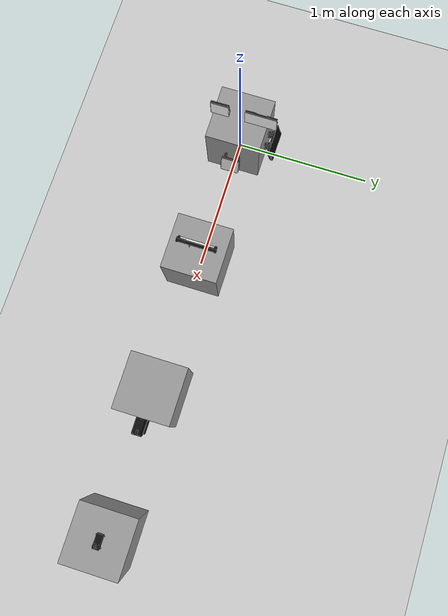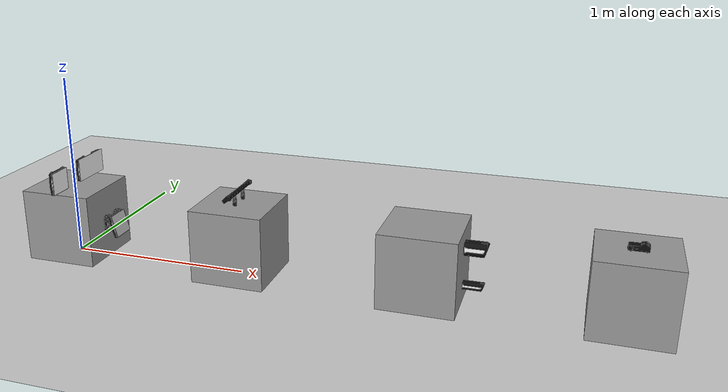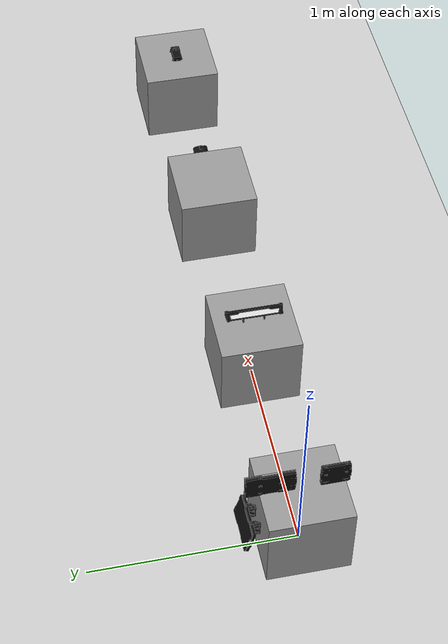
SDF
<?xml version="1.0" ?>
<sdf version="1.6">
    <world name="rm21_referee_system">
        <physics name="1ms" type="ignored">
            <max_step_size>0.001</max_step_size>
            <real_time_factor>1.0</real_time_factor>
        </physics>
        <plugin
      filename="ignition-gazebo-physics-system"
      name="ignition::gazebo::systems::Physics">
    </plugin>
        <plugin
      filename="ignition-gazebo-user-commands-system"
      name="ignition::gazebo::systems::UserCommands">
    </plugin>
        <plugin
      filename="ignition-gazebo-scene-broadcaster-system"
      name="ignition::gazebo::systems::SceneBroadcaster">
    </plugin>
        <light type="directional" name="sun">
            <cast_shadows>true</cast_shadows>
            <pose>0 0 10 0 0 0</pose>
            <diffuse>1 1 1 1</diffuse>
            <specular>0.5 0.5 0.5 1</specular>
            <attenuation>
                <range>1000</range>
                <constant>0.9</constant>
                <linear>0.01</linear>
                <quadratic>0.001</quadratic>
            </attenuation>
            <direction>-0.5 0.1 -0.9</direction>
        </light>
        <model name="ground_plane">
            <static>true</static>
            <link name="link">
                <collision name="collision">
                    <geometry>
                        <plane>
                            <normal>0 0 1</normal>
                            <size>100 100</size>
                        </plane>
                    </geometry>
                </collision>
                <visual name="visual">
                    <geometry>
                        <plane>
                            <normal>0 0 1</normal>
                            <size>100 100</size>
                        </plane>
                    </geometry>
                    <material>
                        <ambient>0.8 0.8 0.8 1</ambient>
                        <diffuse>0.8 0.8 0.8 1</diffuse>
                        <specular>0.8 0.8 0.8 1</specular>
                    </material>
                </visual>
            </link>
        </model>
        <include>
            <uri>model://rm22_armor_module</uri>
            <name>armor_module</name>
            <pose>0 0 0.2 0 0 0</pose>
        </include>
        <include>
            <uri>model://rm22_light_indicator_module</uri>
            <name>light_indicator_module</name>
            <pose>1 0 0.2 0 0 0</pose>
        </include>
        <include>
            <uri>model://rm22_speed_monitor_module</uri>
            <name>speed_monitor_module</name>
            <pose>2 0 0.2 0 0 0</pose>
        </include>
        <include>
            <uri>model://rm22_video_transmitter_module</uri>
            <name>video_transmitter_module</name>
            <pose>3 0 0.2 0 0 0</pose>
        </include>
    </world>
</sdf>

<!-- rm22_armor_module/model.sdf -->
<!-- |    This document was autogenerated by xmacro4sdf from model.sdf.xmacro          | -->
<!-- |    EDITING THIS FILE BY HAND IS NOT RECOMMENDED                                 | -->
<sdf version="1.7">
	<!--include defination-->
	<!--rm22_armor_module example-->
	<model name="rm22_armor_module">
		<pose>0 0 0.2 0 0 0</pose>
		<link name="base_link">
			<inertial>
				<mass>0.4</mass>
				<inertia>
					<ixx>0.01066666666666667</ixx>
					<ixy>0</ixy>
					<ixz>0</ixz>
					<iyy>0.01066666666666667</iyy>
					<iyz>0</iyz>
					<izz>0.01066666666666667</izz>
				</inertia>
			</inertial>
			<visual name="visual">
				<geometry>
					<box>
						<size>0.4 0.4 0.4</size>
					</box>
				</geometry>
				<material>
					<ambient>0.6 0.6 0.6 1</ambient>
					<diffuse>0.6 0.6 0.6 1</diffuse>
				</material>
			</visual>
			<collision name="collision">
				<geometry>
					<box>
						<size>0.4 0.4 0.4</size>
					</box>
				</geometry>
			</collision>
		</link>
		<joint name="armor_1_joint" type="fixed">
			<pose relative_to="base_link">0 -0.15 0.2 0 0 0</pose>
			<parent>base_link</parent>
			<child>armor_1</child>
		</joint>
		<link name="armor_1">
			<pose relative_to="armor_1_joint">0 0 0 0 0 0</pose>
			<inertial>
				<pose>0 0 0.0625 0 0 0</pose>
				<mass>0.1</mass>
				<inertia>
					<ixx>0.0003065083333333333</ixx>
					<ixy>0</ixy>
					<ixz>0</ixz>
					<iyy>0.0001421774166666667</iyy>
					<iyz>0</iyz>
					<izz>0.0001670190833333333</izz>
				</inertia>
			</inertial>
			<visual name="visual">
				<geometry>
					<mesh>
						<uri>model://rm21_armor_module/meshes/small_armor.dae</uri>
					</mesh>
				</geometry>
				<material>
					<ambient>0.1 0.1 0.1</ambient>
					<diffuse>0.05 0.05 0.05</diffuse>
					<specular>0.6 0.6 0.6</specular>
				</material>
			</visual>
			<visual name="target_visual">
				<geometry>
					<mesh>
						<uri>model://rm21_armor_module/meshes/small_armor_target.dae</uri>
					</mesh>
				</geometry>
				<material>
					<ambient>0.1 0.1 0.1</ambient>
					<diffuse>0.05 0.05 0.05</diffuse>
					<specular>0.6 0.6 0.6</specular>
				</material>
			</visual>
			<visual name="light_bar_visual">
				<geometry>
					<mesh>
						<uri>model://rm21_armor_module/meshes/small_armor_light_bar.dae</uri>
					</mesh>
				</geometry>
				<material>
					<ambient>1.0 1.0 1.0</ambient>
					<diffuse>1.0 1.0 1.0</diffuse>
					<specular>0.5 0.5 0.5</specular>
				</material>
			</visual>
			<visual name="sticker_visual">
				<pose>0.014 0 0.0625 1.5708 0 1.5708</pose>
				<geometry>
					<plane>
						<normal>0 0 1</normal>
						<size>0.130 0.120</size>
					</plane>
				</geometry>
				<material>
					<ambient>1.0 1.0 1.0</ambient>
					<diffuse>1.0 1.0 1.0</diffuse>
					<specular>0.1 0.1 0.1</specular>
					<pbr>
						<metal>
							<albedo_map>model://rm22_armor_module/materials/textures/ua_num1_0.png</albedo_map>
						</metal>
					</pbr>
				</material>
			</visual>
			<collision name="collision">
				<pose>0 0 0.0625 0 0 0</pose>
				<geometry>
					<box>
						<size>0.013 0.135 0.125</size>
					</box>
				</geometry>
			</collision>
			<collision name="target_collision">
				<pose>0.012 0 0.0625 0 0 0</pose>
				<geometry>
					<box>
						<size>0.008 0.135 0.125</size>
					</box>
				</geometry>
			</collision>
		</link>
		<joint name="armor_2_joint" type="fixed">
			<pose relative_to="base_link">0 0.15 0.2 0 0 0</pose>
			<parent>base_link</parent>
			<child>armor_2</child>
		</joint>
		<link name="armor_2">
			<pose relative_to="armor_2_joint">0 0 0 0 0 0</pose>
			<inertial>
				<pose>0 0 0.065 0 0 0</pose>
				<mass>0.1</mass>
				<inertia>
					<ixx>0.0006049666666666666</ixx>
					<ixy>0</ixy>
					<ixz>0</ixz>
					<iyy>0.00014203333333333333</iyy>
					<iyz>0</iyz>
					<izz>0.0004653333333333333</izz>
				</inertia>
			</inertial>
			<visual name="visual">
				<geometry>
					<mesh>
						<uri>model://rm21_armor_module/meshes/large_armor.stl</uri>
					</mesh>
				</geometry>
				<material>
					<ambient>0.1 0.1 0.1</ambient>
					<diffuse>0.05 0.05 0.05</diffuse>
					<specular>0.6 0.6 0.6</specular>
				</material>
			</visual>
			<visual name="target_visual">
				<geometry>
					<mesh>
						<uri>model://rm21_armor_module/meshes/large_armor_target.stl</uri>
					</mesh>
				</geometry>
				<material>
					<ambient>0.1 0.1 0.1</ambient>
					<diffuse>0.05 0.05 0.05</diffuse>
					<specular>0.6 0.6 0.6</specular>
				</material>
			</visual>
			<visual name="light_bar_visual">
				<geometry>
					<mesh>
						<uri>model://rm21_armor_module/meshes/large_armor_light_bar.stl</uri>
					</mesh>
				</geometry>
				<material>
					<ambient>1.0 1.0 1.0</ambient>
					<diffuse>1.0 1.0 1.0</diffuse>
					<specular>0.5 0.5 0.5</specular>
				</material>
			</visual>
			<visual name="sticker_visual">
				<pose>0.014 0 0.0645 1.5708 0 1.5708</pose>
				<geometry>
					<plane>
						<normal>0 0 1</normal>
						<size>0.233 0.127</size>
					</plane>
				</geometry>
				<material>
					<ambient>1.0 1.0 1.0</ambient>
					<diffuse>1.0 1.0 1.0</diffuse>
					<specular>0.1 0.1 0.1</specular>
					<pbr>
						<metal>
							<albedo_map>model://rm21_armor_module/materials/textures/large_num1.png</albedo_map>
						</metal>
					</pbr>
				</material>
			</visual>
			<collision name="collision">
				<pose>0 0 0.0625 0 0 0</pose>
				<geometry>
					<box>
						<size>0.013 0.236 0.125</size>
					</box>
				</geometry>
			</collision>
			<collision name="target_collision">
				<pose>0.012 0 0.0625 0 0 0</pose>
				<geometry>
					<box>
						<size>0.008 0.236 0.125</size>
					</box>
				</geometry>
			</collision>
		</link>
		<joint name="armor_support_frame_3_joint" type="fixed">
			<pose relative_to="base_link">0.2 0 0 0 0 0</pose>
			<parent>base_link</parent>
			<child>armor_support_frame_3</child>
		</joint>
		<link name="armor_support_frame_3">
			<pose relative_to="armor_support_frame_3_joint">0 0 0 0 0 0</pose>
			<inertial>
				<pose>0.035 0 0 0 0 0</pose>
				<mass>0.1</mass>
				<inertia>
					<ixx>0.00023080833333333334</ixx>
					<ixy>0</ixy>
					<ixz>0</ixz>
					<iyy>0.00017014166666666668</iyy>
					<iyz>0</iyz>
					<izz>0.00014468333333333334</izz>
				</inertia>
			</inertial>
			<visual name="visual">
				<geometry>
					<mesh>
						<uri>model://rm21_armor_module/meshes/armor_support_frame.stl</uri>
					</mesh>
				</geometry>
				<material>
					<ambient>0.1 0.1 0.1</ambient>
					<diffuse>0.05 0.05 0.05</diffuse>
					<specular>0.6 0.6 0.6</specular>
				</material>
			</visual>
			<collision name="collision">
				<pose>0.015 0 0 0 0 0</pose>
				<geometry>
					<box>
						<size>0.03 0.11 0.08</size>
					</box>
				</geometry>
			</collision>
		</link>
		<joint name="armor_3_joint" type="fixed">
			<pose relative_to="armor_support_frame_3">0.075 0 -0.071 0 -0.262 0</pose>
			<parent>armor_support_frame_3</parent>
			<child>armor_3</child>
		</joint>
		<link name="armor_3">
			<pose relative_to="armor_3_joint">0 0 0 0 0 0</pose>
			<inertial>
				<pose>0 0 0.0625 0 0 0</pose>
				<mass>0.1</mass>
				<inertia>
					<ixx>0.0003065083333333333</ixx>
					<ixy>0</ixy>
					<ixz>0</ixz>
					<iyy>0.0001421774166666667</iyy>
					<iyz>0</iyz>
					<izz>0.0001670190833333333</izz>
				</inertia>
			</inertial>
			<visual name="visual">
				<geometry>
					<mesh>
						<uri>model://rm21_armor_module/meshes/small_armor.dae</uri>
					</mesh>
				</geometry>
				<material>
					<ambient>0.1 0.1 0.1</ambient>
					<diffuse>0.05 0.05 0.05</diffuse>
					<specular>0.6 0.6 0.6</specular>
				</material>
			</visual>
			<visual name="target_visual">
				<geometry>
					<mesh>
						<uri>model://rm21_armor_module/meshes/small_armor_target.dae</uri>
					</mesh>
				</geometry>
				<material>
					<ambient>0.1 0.1 0.1</ambient>
					<diffuse>0.05 0.05 0.05</diffuse>
					<specular>0.6 0.6 0.6</specular>
				</material>
			</visual>
			<visual name="light_bar_visual">
				<geometry>
					<mesh>
						<uri>model://rm21_armor_module/meshes/small_armor_light_bar.dae</uri>
					</mesh>
				</geometry>
				<material>
					<ambient>1.0 1.0 1.0</ambient>
					<diffuse>1.0 1.0 1.0</diffuse>
					<specular>0.5 0.5 0.5</specular>
				</material>
			</visual>
			<visual name="sticker_visual">
				<pose>0.014 0 0.0625 1.5708 0 1.5708</pose>
				<geometry>
					<plane>
						<normal>0 0 1</normal>
						<size>0.130 0.120</size>
					</plane>
				</geometry>
				<material>
					<ambient>1.0 1.0 1.0</ambient>
					<diffuse>1.0 1.0 1.0</diffuse>
					<specular>0.1 0.1 0.1</specular>
					<pbr>
						<metal>
							<albedo_map>model://rm22_armor_module/materials/textures/ua_num2_1.png</albedo_map>
						</metal>
					</pbr>
				</material>
			</visual>
			<collision name="collision">
				<pose>0 0 0.0625 0 0 0</pose>
				<geometry>
					<box>
						<size>0.013 0.135 0.125</size>
					</box>
				</geometry>
			</collision>
			<collision name="target_collision">
				<pose>0.012 0 0.0625 0 0 0</pose>
				<geometry>
					<box>
						<size>0.008 0.135 0.125</size>
					</box>
				</geometry>
			</collision>
		</link>
		<joint name="armor_support_frame_4_joint" type="fixed">
			<pose relative_to="base_link">0 0.2 0 0 0 1.57</pose>
			<parent>base_link</parent>
			<child>armor_support_frame_4</child>
		</joint>
		<link name="armor_support_frame_4">
			<pose relative_to="armor_support_frame_4_joint">0 0 0 0 0 0</pose>
			<inertial>
				<pose>0.035 0 0 0 0 0</pose>
				<mass>0.1</mass>
				<inertia>
					<ixx>0.00023080833333333334</ixx>
					<ixy>0</ixy>
					<ixz>0</ixz>
					<iyy>0.00017014166666666668</iyy>
					<iyz>0</iyz>
					<izz>0.00014468333333333334</izz>
				</inertia>
			</inertial>
			<visual name="visual">
				<geometry>
					<mesh>
						<uri>model://rm21_armor_module/meshes/armor_support_frame.stl</uri>
					</mesh>
				</geometry>
				<material>
					<ambient>0.1 0.1 0.1</ambient>
					<diffuse>0.05 0.05 0.05</diffuse>
					<specular>0.6 0.6 0.6</specular>
				</material>
			</visual>
			<collision name="collision">
				<pose>0.015 0 0 0 0 0</pose>
				<geometry>
					<box>
						<size>0.03 0.11 0.08</size>
					</box>
				</geometry>
			</collision>
		</link>
		<joint name="armor_4_joint" type="fixed">
			<pose relative_to="armor_support_frame_4">0.075 0 -0.071 0 -0.262 0</pose>
			<parent>armor_support_frame_4</parent>
			<child>armor_4</child>
		</joint>
		<link name="armor_4">
			<pose relative_to="armor_4_joint">0 0 0 0 0 0</pose>
			<inertial>
				<pose>0 0 0.065 0 0 0</pose>
				<mass>0.1</mass>
				<inertia>
					<ixx>0.0006049666666666666</ixx>
					<ixy>0</ixy>
					<ixz>0</ixz>
					<iyy>0.00014203333333333333</iyy>
					<iyz>0</iyz>
					<izz>0.0004653333333333333</izz>
				</inertia>
			</inertial>
			<visual name="visual">
				<geometry>
					<mesh>
						<uri>model://rm21_armor_module/meshes/large_armor.stl</uri>
					</mesh>
				</geometry>
				<material>
					<ambient>0.1 0.1 0.1</ambient>
					<diffuse>0.05 0.05 0.05</diffuse>
					<specular>0.6 0.6 0.6</specular>
				</material>
			</visual>
			<visual name="target_visual">
				<geometry>
					<mesh>
						<uri>model://rm21_armor_module/meshes/large_armor_target.stl</uri>
					</mesh>
				</geometry>
				<material>
					<ambient>0.1 0.1 0.1</ambient>
					<diffuse>0.05 0.05 0.05</diffuse>
					<specular>0.6 0.6 0.6</specular>
				</material>
			</visual>
			<visual name="light_bar_visual">
				<geometry>
					<mesh>
						<uri>model://rm21_armor_module/meshes/large_armor_light_bar.stl</uri>
					</mesh>
				</geometry>
				<material>
					<ambient>1.0 1.0 1.0</ambient>
					<diffuse>1.0 1.0 1.0</diffuse>
					<specular>0.5 0.5 0.5</specular>
				</material>
			</visual>
			<collision name="collision">
				<pose>0 0 0.0625 0 0 0</pose>
				<geometry>
					<box>
						<size>0.013 0.236 0.125</size>
					</box>
				</geometry>
			</collision>
			<collision name="target_collision">
				<pose>0.012 0 0.0625 0 0 0</pose>
				<geometry>
					<box>
						<size>0.008 0.236 0.125</size>
					</box>
				</geometry>
			</collision>
		</link>
	</model>
</sdf>

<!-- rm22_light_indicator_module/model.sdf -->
<!-- |    This document was autogenerated by xmacro4sdf from model.sdf.xmacro          | -->
<!-- |    EDITING THIS FILE BY HAND IS NOT RECOMMENDED                                 | -->
<sdf version="1.7">
	<!--include defination-->
	<!--rm22_light_indicator_module example-->
	<model name="rm22_light_indicator_module">
		<pose>0 0 0.2 0 0 0</pose>
		<link name="base_link">
			<inertial>
				<mass>0.4</mass>
				<inertia>
					<ixx>0.01066666666666667</ixx>
					<ixy>0</ixy>
					<ixz>0</ixz>
					<iyy>0.01066666666666667</iyy>
					<iyz>0</iyz>
					<izz>0.01066666666666667</izz>
				</inertia>
			</inertial>
			<visual name="visual">
				<geometry>
					<box>
						<size>0.4 0.4 0.4</size>
					</box>
				</geometry>
				<material>
					<ambient>0.6 0.6 0.6 1</ambient>
					<diffuse>0.6 0.6 0.6 1</diffuse>
				</material>
			</visual>
			<collision name="collision">
				<geometry>
					<box>
						<size>0.4 0.4 0.4</size>
					</box>
				</geometry>
			</collision>
		</link>
		<joint name="light_indicator_joint" type="fixed">
			<pose relative_to="base_link">0 0 0.2 0 0 0</pose>
			<parent>base_link</parent>
			<child>light_indicator</child>
		</joint>
		<link name="light_indicator">
			<pose relative_to="light_indicator_joint">0 0 0 0 0 0</pose>
			<inertial>
				<pose>0 0 0.04 0 0 0</pose>
				<mass>0.1</mass>
				<inertia>
					<ixx>0.0006666666666666669</ixx>
					<ixy>0</ixy>
					<ixz>0</ixz>
					<iyy>3.416666666666667e-05</iyy>
					<iyz>0</iyz>
					<izz>0.0006741666666666668</izz>
				</inertia>
			</inertial>
			<visual name="light_indicator_holder_visual">
				<geometry>
					<mesh>
						<uri>model://rm21_light_indicator_module/meshes/light_indicator_holder.dae</uri>
					</mesh>
				</geometry>
				<material>
					<ambient>0.1 0.1 0.1</ambient>
					<diffuse>0.05 0.05 0.05</diffuse>
					<specular>0.6 0.6 0.6</specular>
				</material>
			</visual>
			<visual name="light_bar_visual">
				<geometry>
					<mesh>
						<uri>model://rm21_light_indicator_module/meshes/light_indicator_bar.dae</uri>
					</mesh>
				</geometry>
				<material>
					<ambient>1.0 1.0 1.0</ambient>
					<diffuse>1.0 1.0 1.0</diffuse>
					<specular>0.5 0.5 0.5</specular>
				</material>
			</visual>
			<collision name="light_bar_collision">
				<pose>0 0 0.06 0 0 0</pose>
				<geometry>
					<box>
						<size>0.05 0.28 0.04</size>
					</box>
				</geometry>
			</collision>
		</link>
	</model>
</sdf>

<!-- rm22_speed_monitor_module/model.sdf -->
<!-- |    This document was autogenerated by xmacro4sdf from model.sdf.xmacro          | -->
<!-- |    EDITING THIS FILE BY HAND IS NOT RECOMMENDED                                 | -->
<sdf version="1.7">
	<!--include defination-->
	<!--rm22_speed_monitor_module example-->
	<model name="rm22_speed_monitor_module">
		<pose>0 0 0.2 0 0 0</pose>
		<link name="base_link">
			<inertial>
				<mass>0.4</mass>
				<inertia>
					<ixx>0.01066666666666667</ixx>
					<ixy>0</ixy>
					<ixz>0</ixz>
					<iyy>0.01066666666666667</iyy>
					<iyz>0</iyz>
					<izz>0.01066666666666667</izz>
				</inertia>
			</inertial>
			<visual name="visual">
				<geometry>
					<box>
						<size>0.4 0.4 0.4</size>
					</box>
				</geometry>
				<material>
					<ambient>0.6 0.6 0.6 1</ambient>
					<diffuse>0.6 0.6 0.6 1</diffuse>
				</material>
			</visual>
			<collision name="collision">
				<geometry>
					<box>
						<size>0.4 0.4 0.4</size>
					</box>
				</geometry>
			</collision>
		</link>
		<joint name="speed_monitor_1_joint" type="fixed">
			<pose relative_to="base_link">0.2 0 -0.1 0 0 0</pose>
			<parent>base_link</parent>
			<child>speed_monitor_1</child>
		</joint>
		<link name="speed_monitor_1">
			<pose relative_to="speed_monitor_1_joint">0 0 0 0 0 0</pose>
			<inertial>
				<pose>0.055 0 0 0 0 0</pose>
				<mass>0.1</mass>
				<inertia>
					<ixx>2.941666666666667e-05</ixx>
					<ixy>0</ixy>
					<ixz>0</ixz>
					<iyy>0.00011484166666666668</iyy>
					<iyz>0</iyz>
					<izz>0.00011624166666666668</izz>
				</inertia>
			</inertial>
			<visual name="visual">
				<geometry>
					<mesh>
						<uri>model://rm21_speed_monitor_module/meshes/speed_monitor_17mm.dae</uri>
					</mesh>
				</geometry>
				<material>
					<ambient>0.1 0.1 0.1</ambient>
					<diffuse>0.05 0.05 0.05</diffuse>
					<specular>0.6 0.6 0.6</specular>
				</material>
			</visual>
			<visual name="light_bar_visual">
				<geometry>
					<mesh>
						<uri>model://rm21_speed_monitor_module/meshes/speed_monitor_17mm_light_bar.dae</uri>
					</mesh>
				</geometry>
				<material>
					<ambient>1.0 1.0 1.0</ambient>
					<diffuse>1.0 1.0 1.0</diffuse>
					<specular>0.5 0.5 0.5</specular>
				</material>
			</visual>
			<collision name="collision">
				<pose>0.055 0 0 0 0 0</pose>
				<geometry>
					<box>
						<size>0.11 0.043 0.041</size>
					</box>
				</geometry>
			</collision>
		</link>
		<joint name="speed_monitor_2_joint" type="fixed">
			<pose relative_to="base_link">0.2 0 0.1 0 0 0</pose>
			<parent>base_link</parent>
			<child>speed_monitor_2</child>
		</joint>
		<link name="speed_monitor_2">
			<pose relative_to="speed_monitor_2_joint">0 0 0 0 0 0</pose>
			<inertial>
				<pose>0.061 0 0 0 0 0</pose>
				<mass>0.1</mass>
				<inertia>
					<ixx>9.126666666666666e-05</ixx>
					<ixy>0</ixy>
					<ixz>0</ixz>
					<iyy>0.00016966666666666668</iyy>
					<iyz>0</iyz>
					<izz>0.00016966666666666668</izz>
				</inertia>
			</inertial>
			<visual name="visual">
				<geometry>
					<mesh>
						<uri>model://rm21_speed_monitor_module/meshes/speed_monitor_42mm.stl</uri>
					</mesh>
				</geometry>
				<material>
					<ambient>0.1 0.1 0.1</ambient>
					<diffuse>0.05 0.05 0.05</diffuse>
					<specular>0.6 0.6 0.6</specular>
				</material>
			</visual>
			<visual name="light_bar_visual">
				<geometry>
					<mesh>
						<uri>model://rm21_speed_monitor_module/meshes/speed_monitor_42mm_light_bar.stl</uri>
					</mesh>
				</geometry>
				<material>
					<ambient>1.0 1.0 1.0</ambient>
					<diffuse>1.0 1.0 1.0</diffuse>
					<specular>0.5 0.5 0.5</specular>
				</material>
			</visual>
			<collision name="collision">
				<pose>0.061 0 0 0 0 0</pose>
				<geometry>
					<box>
						<size>0.122 0.074 0.074</size>
					</box>
				</geometry>
			</collision>
		</link>
	</model>
</sdf>

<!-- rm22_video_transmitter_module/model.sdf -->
<!-- |    This document was autogenerated by xmacro4sdf from model.sdf.xmacro          | -->
<!-- |    EDITING THIS FILE BY HAND IS NOT RECOMMENDED                                 | -->
<sdf version="1.7">
	<!--include defination-->
	<!--rm22_video_transmitter_module example-->
	<model name="rm22_video_transmitter_module">
		<pose>0 0 0.2 0 0 0</pose>
		<link name="base_link">
			<inertial>
				<mass>0.4</mass>
				<inertia>
					<ixx>0.01066666666666667</ixx>
					<ixy>0</ixy>
					<ixz>0</ixz>
					<iyy>0.01066666666666667</iyy>
					<iyz>0</iyz>
					<izz>0.01066666666666667</izz>
				</inertia>
			</inertial>
			<visual name="visual">
				<geometry>
					<box>
						<size>0.4 0.4 0.4</size>
					</box>
				</geometry>
				<material>
					<ambient>0.6 0.6 0.6 1</ambient>
					<diffuse>0.6 0.6 0.6 1</diffuse>
				</material>
			</visual>
			<collision name="collision">
				<geometry>
					<box>
						<size>0.4 0.4 0.4</size>
					</box>
				</geometry>
			</collision>
		</link>
		<joint name="video_transmitter_joint" type="fixed">
			<pose relative_to="base_link">0 0 0.2 0 0 0</pose>
			<parent>base_link</parent>
			<child>video_transmitter</child>
		</joint>
		<link name="video_transmitter">
			<pose relative_to="video_transmitter_joint">0 0 0 0 0 0</pose>
			<inertial>
				<pose>0 0 0.014 0 0 0</pose>
				<mass>0.1</mass>
				<inertia>
					<ixx>2.7366666666666673e-05</ixx>
					<ixy>0</ixy>
					<ixz>0</ixz>
					<iyy>8.986666666666668e-05</iyy>
					<iyz>0</iyz>
					<izz>0.00010416666666666669</izz>
				</inertia>
			</inertial>
			<visual name="visual">
				<geometry>
					<mesh>
						<uri>model://rm21_video_transmitter_module/meshes/video_transmitter.stl</uri>
					</mesh>
				</geometry>
				<material>
					<ambient>0.1 0.1 0.1</ambient>
					<diffuse>0.05 0.05 0.05</diffuse>
					<specular>0.6 0.6 0.6</specular>
				</material>
			</visual>
			<visual name="glass_visual">
				<geometry>
					<mesh>
						<uri>model://rm21_video_transmitter_module/meshes/video_transmitter_glass.stl</uri>
					</mesh>
				</geometry>
				<material>
					<diffuse>1.0 1.0 1.0 0.4</diffuse>
					<specular>1.0 1.0 1.0 0.4</specular>
					<ambient>1.0 1.0 1.0 0.4</ambient>
				</material>
			</visual>
			<collision name="collision">
				<pose>0 0 0.014 0 0 0</pose>
				<geometry>
					<box>
						<size>0.1 0.05 0.028</size>
					</box>
				</geometry>
			</collision>
			<sensor name="video_transmitter" type="camera">
				<pose>0.03 0 0.014 0 0 0</pose>
				<always_on>1</always_on>
				<update_rate>30.0</update_rate>
				<camera>
					<!--100 degree-->
					<horizontal_fov>1.745</horizontal_fov>
					<image>
						<width>1280</width>
						<height>720</height>
					</image>
					<clip>
						<near>0.1</near>
						<far>100</far>
					</clip>
				</camera>
			</sensor>
		</link>
	</model>
</sdf>
